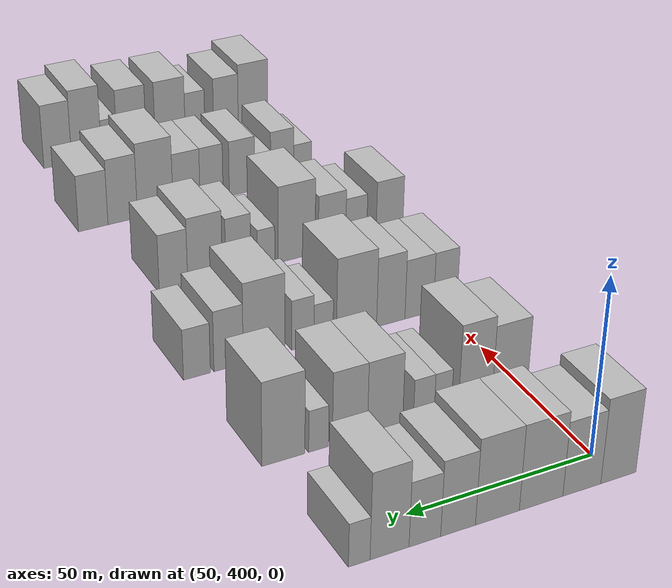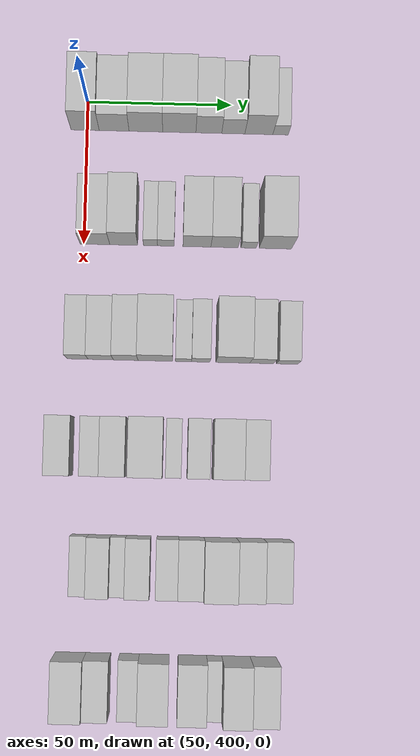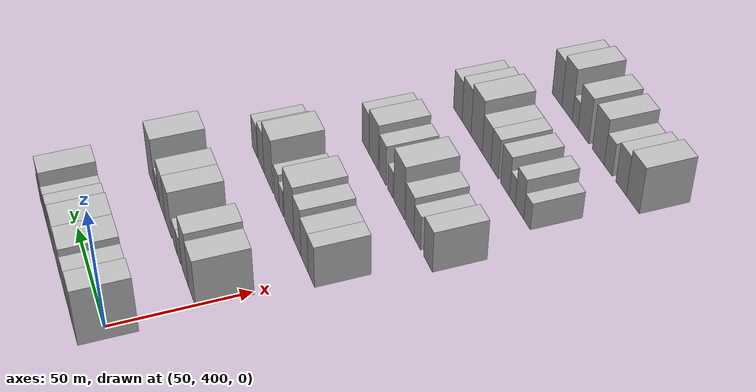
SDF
<sdf version="1.6">
 <world name="default">
  <model name="building_118">
   <static>1</static>
   <pose>50.0000 399.3098 0 0.000000 0.000000 0.000000</pose>
   <link name="link">
    <pose>0 0 12.00 0 0 0</pose>
    <collision name="collision"><geometry><box><size>20.0000 9.7949 24.0000</size></box></geometry></collision>
    <visual name="visual">
     <cast_shadows>0</cast_shadows>
     <geometry><box><size>20.0000 9.7949 24.0000</size></box></geometry>
     <material>
      <script>
       <uri>model://HANNAS_wall/materials/scripts</uri>
       <uri>model://HANNAS_wall/materials/textures</uri>
       <name>vrc/HANNAS_wall</name>
      </script>
     </material>
    </visual>
   </link>
  </model>
  <model name="building_119">
   <static>1</static>
   <pose>50.0000 409.4049 0 0.000000 0.000000 0.000000</pose>
   <link name="link">
    <pose>0 0 10.50 0 0 0</pose>
    <collision name="collision"><geometry><box><size>20.0000 10.3953 21.0000</size></box></geometry></collision>
    <visual name="visual">
     <cast_shadows>0</cast_shadows>
     <geometry><box><size>20.0000 10.3953 21.0000</size></box></geometry>
     <material>
      <script>
       <uri>model://HANNAS_wall/materials/scripts</uri>
       <uri>model://HANNAS_wall/materials/textures</uri>
       <name>vrc/HANNAS_wall</name>
      </script>
     </material>
    </visual>
   </link>
  </model>
  <model name="building_120">
   <static>1</static>
   <pose>50.0000 420.4561 0 0.000000 0.000000 0.000000</pose>
   <link name="link">
    <pose>0 0 12.00 0 0 0</pose>
    <collision name="collision"><geometry><box><size>20.0000 11.7071 24.0000</size></box></geometry></collision>
    <visual name="visual">
     <cast_shadows>0</cast_shadows>
     <geometry><box><size>20.0000 11.7071 24.0000</size></box></geometry>
     <material>
      <script>
       <uri>model://HANNAS_wall/materials/scripts</uri>
       <uri>model://HANNAS_wall/materials/textures</uri>
       <name>vrc/HANNAS_wall</name>
      </script>
     </material>
    </visual>
   </link>
  </model>
  <model name="building_121">
   <static>1</static>
   <pose>50.0000 432.0817 0 0.000000 0.000000 0.000000</pose>
   <link name="link">
    <pose>0 0 12.00 0 0 0</pose>
    <collision name="collision"><geometry><box><size>20.0000 11.5442 24.0000</size></box></geometry></collision>
    <visual name="visual">
     <cast_shadows>0</cast_shadows>
     <geometry><box><size>20.0000 11.5442 24.0000</size></box></geometry>
     <material>
      <script>
       <uri>model://HANNAS_wall/materials/scripts</uri>
       <uri>model://HANNAS_wall/materials/textures</uri>
       <name>vrc/HANNAS_wall</name>
      </script>
     </material>
    </visual>
   </link>
  </model>
  <model name="building_122">
   <static>1</static>
   <pose>50.0000 442.3535 0 0.000000 0.000000 0.000000</pose>
   <link name="link">
    <pose>0 0 10.50 0 0 0</pose>
    <collision name="collision"><geometry><box><size>20.0000 8.9993 21.0000</size></box></geometry></collision>
    <visual name="visual">
     <cast_shadows>0</cast_shadows>
     <geometry><box><size>20.0000 8.9993 21.0000</size></box></geometry>
     <material>
      <script>
       <uri>model://HANNAS_wall/materials/scripts</uri>
       <uri>model://HANNAS_wall/materials/textures</uri>
       <name>vrc/HANNAS_wall</name>
      </script>
     </material>
    </visual>
   </link>
  </model>
  <model name="building_123">
   <static>1</static>
   <pose>50.0000 450.8728 0 0.000000 0.000000 0.000000</pose>
   <link name="link">
    <pose>0 0 9.00 0 0 0</pose>
    <collision name="collision"><geometry><box><size>20.0000 8.0392 18.0000</size></box></geometry></collision>
    <visual name="visual">
     <cast_shadows>0</cast_shadows>
     <geometry><box><size>20.0000 8.0392 18.0000</size></box></geometry>
     <material>
      <script>
       <uri>model://HANNAS_wall/materials/scripts</uri>
       <uri>model://HANNAS_wall/materials/textures</uri>
       <name>vrc/HANNAS_wall</name>
      </script>
     </material>
    </visual>
   </link>
  </model>
  <model name="building_124">
   <static>1</static>
   <pose>50.0000 459.7650 0 0.000000 0.000000 0.000000</pose>
   <link name="link">
    <pose>0 0 12.00 0 0 0</pose>
    <collision name="collision"><geometry><box><size>20.0000 9.7453 24.0000</size></box></geometry></collision>
    <visual name="visual">
     <cast_shadows>0</cast_shadows>
     <geometry><box><size>20.0000 9.7453 24.0000</size></box></geometry>
     <material>
      <script>
       <uri>model://HANNAS_wall/materials/scripts</uri>
       <uri>model://HANNAS_wall/materials/textures</uri>
       <name>vrc/HANNAS_wall</name>
      </script>
     </material>
    </visual>
   </link>
  </model>
  <model name="building_125">
   <static>1</static>
   <pose>50.0000 467.3127 0 0.000000 0.000000 0.000000</pose>
   <link name="link">
    <pose>0 0 6.00 0 0 0</pose>
    <collision name="collision"><geometry><box><size>20.0000 5.3501 12.0000</size></box></geometry></collision>
    <visual name="visual">
     <cast_shadows>0</cast_shadows>
     <geometry><box><size>20.0000 5.3501 12.0000</size></box></geometry>
     <material>
      <script>
       <uri>model://HANNAS_wall/materials/scripts</uri>
       <uri>model://HANNAS_wall/materials/textures</uri>
       <name>vrc/HANNAS_wall</name>
      </script>
     </material>
    </visual>
   </link>
  </model>
  <model name="building_239">
   <static>1</static>
   <pose>90.0000 403.8618 0 0.000000 0.000000 0.000000</pose>
   <link name="link">
    <pose>0 0 10.50 0 0 0</pose>
    <collision name="collision"><geometry><box><size>20.0000 10.2549 21.0000</size></box></geometry></collision>
    <visual name="visual">
     <cast_shadows>0</cast_shadows>
     <geometry><box><size>20.0000 10.2549 21.0000</size></box></geometry>
     <material>
      <script>
       <uri>model://HANNAS_wall/materials/scripts</uri>
       <uri>model://HANNAS_wall/materials/textures</uri>
       <name>vrc/HANNAS_wall</name>
      </script>
     </material>
    </visual>
   </link>
  </model>
  <model name="building_240">
   <static>1</static>
   <pose>90.0000 413.8227 0 0.000000 0.000000 0.000000</pose>
   <link name="link">
    <pose>0 0 12.00 0 0 0</pose>
    <collision name="collision"><geometry><box><size>20.0000 9.6669 24.0000</size></box></geometry></collision>
    <visual name="visual">
     <cast_shadows>0</cast_shadows>
     <geometry><box><size>20.0000 9.6669 24.0000</size></box></geometry>
     <material>
      <script>
       <uri>model://HANNAS_wall/materials/scripts</uri>
       <uri>model://HANNAS_wall/materials/textures</uri>
       <name>vrc/HANNAS_wall</name>
      </script>
     </material>
    </visual>
   </link>
  </model>
  <model name="building_241">
   <static>1</static>
   <pose>90.0000 423.0763 0 0.000000 0.000000 0.000000</pose>
   <link name="link">
    <pose>0 0 6.00 0 0 0</pose>
    <collision name="collision"><geometry><box><size>20.0000 4.8404 12.0000</size></box></geometry></collision>
    <visual name="visual">
     <cast_shadows>0</cast_shadows>
     <geometry><box><size>20.0000 4.8404 12.0000</size></box></geometry>
     <material>
      <script>
       <uri>model://HANNAS_wall/materials/scripts</uri>
       <uri>model://HANNAS_wall/materials/textures</uri>
       <name>vrc/HANNAS_wall</name>
      </script>
     </material>
    </visual>
   </link>
  </model>
  <model name="building_242">
   <static>1</static>
   <pose>90.0000 428.3916 0 0.000000 0.000000 0.000000</pose>
   <link name="link">
    <pose>0 0 6.00 0 0 0</pose>
    <collision name="collision"><geometry><box><size>20.0000 5.7902 12.0000</size></box></geometry></collision>
    <visual name="visual">
     <cast_shadows>0</cast_shadows>
     <geometry><box><size>20.0000 5.7902 12.0000</size></box></geometry>
     <material>
      <script>
       <uri>model://HANNAS_wall/materials/scripts</uri>
       <uri>model://HANNAS_wall/materials/textures</uri>
       <name>vrc/HANNAS_wall</name>
      </script>
     </material>
    </visual>
   </link>
  </model>
  <model name="building_243">
   <static>1</static>
   <pose>90.0000 439.1144 0 0.000000 0.000000 0.000000</pose>
   <link name="link">
    <pose>0 0 10.50 0 0 0</pose>
    <collision name="collision"><geometry><box><size>20.0000 9.6554 21.0000</size></box></geometry></collision>
    <visual name="visual">
     <cast_shadows>0</cast_shadows>
     <geometry><box><size>20.0000 9.6554 21.0000</size></box></geometry>
     <material>
      <script>
       <uri>model://HANNAS_wall/materials/scripts</uri>
       <uri>model://HANNAS_wall/materials/textures</uri>
       <name>vrc/HANNAS_wall</name>
      </script>
     </material>
    </visual>
   </link>
  </model>
  <model name="building_244">
   <static>1</static>
   <pose>90.0000 448.6526 0 0.000000 0.000000 0.000000</pose>
   <link name="link">
    <pose>0 0 10.50 0 0 0</pose>
    <collision name="collision"><geometry><box><size>20.0000 9.4209 21.0000</size></box></geometry></collision>
    <visual name="visual">
     <cast_shadows>0</cast_shadows>
     <geometry><box><size>20.0000 9.4209 21.0000</size></box></geometry>
     <material>
      <script>
       <uri>model://HANNAS_wall/materials/scripts</uri>
       <uri>model://HANNAS_wall/materials/textures</uri>
       <name>vrc/HANNAS_wall</name>
      </script>
     </material>
    </visual>
   </link>
  </model>
  <model name="building_245">
   <static>1</static>
   <pose>90.0000 457.0081 0 0.000000 0.000000 0.000000</pose>
   <link name="link">
    <pose>0 0 6.00 0 0 0</pose>
    <collision name="collision"><geometry><box><size>20.0000 5.2902 12.0000</size></box></geometry></collision>
    <visual name="visual">
     <cast_shadows>0</cast_shadows>
     <geometry><box><size>20.0000 5.2902 12.0000</size></box></geometry>
     <material>
      <script>
       <uri>model://HANNAS_wall/materials/scripts</uri>
       <uri>model://HANNAS_wall/materials/textures</uri>
       <name>vrc/HANNAS_wall</name>
      </script>
     </material>
    </visual>
   </link>
  </model>
  <model name="building_246">
   <static>1</static>
   <pose>90.0000 466.2679 0 0.000000 0.000000 0.000000</pose>
   <link name="link">
    <pose>0 0 12.00 0 0 0</pose>
    <collision name="collision"><geometry><box><size>20.0000 11.2294 24.0000</size></box></geometry></collision>
    <visual name="visual">
     <cast_shadows>0</cast_shadows>
     <geometry><box><size>20.0000 11.2294 24.0000</size></box></geometry>
     <material>
      <script>
       <uri>model://HANNAS_wall/materials/scripts</uri>
       <uri>model://HANNAS_wall/materials/textures</uri>
       <name>vrc/HANNAS_wall</name>
      </script>
     </material>
    </visual>
   </link>
  </model>
  <model name="building_373">
   <static>1</static>
   <pose>130.0000 399.0765 0 0.000000 0.000000 0.000000</pose>
   <link name="link">
    <pose>0 0 9.00 0 0 0</pose>
    <collision name="collision"><geometry><box><size>20.0000 7.2151 18.0000</size></box></geometry></collision>
    <visual name="visual">
     <cast_shadows>0</cast_shadows>
     <geometry><box><size>20.0000 7.2151 18.0000</size></box></geometry>
     <material>
      <script>
       <uri>model://HANNAS_wall/materials/scripts</uri>
       <uri>model://HANNAS_wall/materials/textures</uri>
       <name>vrc/HANNAS_wall</name>
      </script>
     </material>
    </visual>
   </link>
  </model>
  <model name="building_374">
   <static>1</static>
   <pose>130.0000 407.0105 0 0.000000 0.000000 0.000000</pose>
   <link name="link">
    <pose>0 0 9.00 0 0 0</pose>
    <collision name="collision"><geometry><box><size>20.0000 8.6527 18.0000</size></box></geometry></collision>
    <visual name="visual">
     <cast_shadows>0</cast_shadows>
     <geometry><box><size>20.0000 8.6527 18.0000</size></box></geometry>
     <material>
      <script>
       <uri>model://HANNAS_wall/materials/scripts</uri>
       <uri>model://HANNAS_wall/materials/textures</uri>
       <name>vrc/HANNAS_wall</name>
      </script>
     </material>
    </visual>
   </link>
  </model>
  <model name="building_375">
   <static>1</static>
   <pose>130.0000 415.5756 0 0.000000 0.000000 0.000000</pose>
   <link name="link">
    <pose>0 0 10.50 0 0 0</pose>
    <collision name="collision"><geometry><box><size>20.0000 8.4777 21.0000</size></box></geometry></collision>
    <visual name="visual">
     <cast_shadows>0</cast_shadows>
     <geometry><box><size>20.0000 8.4777 21.0000</size></box></geometry>
     <material>
      <script>
       <uri>model://HANNAS_wall/materials/scripts</uri>
       <uri>model://HANNAS_wall/materials/textures</uri>
       <name>vrc/HANNAS_wall</name>
      </script>
     </material>
    </visual>
   </link>
  </model>
  <model name="building_376">
   <static>1</static>
   <pose>130.0000 425.7282 0 0.000000 0.000000 0.000000</pose>
   <link name="link">
    <pose>0 0 12.00 0 0 0</pose>
    <collision name="collision"><geometry><box><size>20.0000 11.8275 24.0000</size></box></geometry></collision>
    <visual name="visual">
     <cast_shadows>0</cast_shadows>
     <geometry><box><size>20.0000 11.8275 24.0000</size></box></geometry>
     <material>
      <script>
       <uri>model://HANNAS_wall/materials/scripts</uri>
       <uri>model://HANNAS_wall/materials/textures</uri>
       <name>vrc/HANNAS_wall</name>
      </script>
     </material>
    </visual>
   </link>
  </model>
  <model name="building_377">
   <static>1</static>
   <pose>130.0000 435.3928 0 0.000000 0.000000 0.000000</pose>
   <link name="link">
    <pose>0 0 6.00 0 0 0</pose>
    <collision name="collision"><geometry><box><size>20.0000 5.5018 12.0000</size></box></geometry></collision>
    <visual name="visual">
     <cast_shadows>0</cast_shadows>
     <geometry><box><size>20.0000 5.5018 12.0000</size></box></geometry>
     <material>
      <script>
       <uri>model://HANNAS_wall/materials/scripts</uri>
       <uri>model://HANNAS_wall/materials/textures</uri>
       <name>vrc/HANNAS_wall</name>
      </script>
     </material>
    </visual>
   </link>
  </model>
  <model name="building_378">
   <static>1</static>
   <pose>130.0000 441.3277 0 0.000000 0.000000 0.000000</pose>
   <link name="link">
    <pose>0 0 7.50 0 0 0</pose>
    <collision name="collision"><geometry><box><size>20.0000 6.3680 15.0000</size></box></geometry></collision>
    <visual name="visual">
     <cast_shadows>0</cast_shadows>
     <geometry><box><size>20.0000 6.3680 15.0000</size></box></geometry>
     <material>
      <script>
       <uri>model://HANNAS_wall/materials/scripts</uri>
       <uri>model://HANNAS_wall/materials/textures</uri>
       <name>vrc/HANNAS_wall</name>
      </script>
     </material>
    </visual>
   </link>
  </model>
  <model name="building_379">
   <static>1</static>
   <pose>130.0000 452.3756 0 0.000000 0.000000 0.000000</pose>
   <link name="link">
    <pose>0 0 12.00 0 0 0</pose>
    <collision name="collision"><geometry><box><size>20.0000 11.7278 24.0000</size></box></geometry></collision>
    <visual name="visual">
     <cast_shadows>0</cast_shadows>
     <geometry><box><size>20.0000 11.7278 24.0000</size></box></geometry>
     <material>
      <script>
       <uri>model://HANNAS_wall/materials/scripts</uri>
       <uri>model://HANNAS_wall/materials/textures</uri>
       <name>vrc/HANNAS_wall</name>
      </script>
     </material>
    </visual>
   </link>
  </model>
  <model name="building_380">
   <static>1</static>
   <pose>130.0000 462.3001 0 0.000000 0.000000 0.000000</pose>
   <link name="link">
    <pose>0 0 9.00 0 0 0</pose>
    <collision name="collision"><geometry><box><size>20.0000 8.1212 18.0000</size></box></geometry></collision>
    <visual name="visual">
     <cast_shadows>0</cast_shadows>
     <geometry><box><size>20.0000 8.1212 18.0000</size></box></geometry>
     <material>
      <script>
       <uri>model://HANNAS_wall/materials/scripts</uri>
       <uri>model://HANNAS_wall/materials/textures</uri>
       <name>vrc/HANNAS_wall</name>
      </script>
     </material>
    </visual>
   </link>
  </model>
  <model name="building_381">
   <static>1</static>
   <pose>130.0000 471.0426 0 0.000000 0.000000 0.000000</pose>
   <link name="link">
    <pose>0 0 7.50 0 0 0</pose>
    <collision name="collision"><geometry><box><size>20.0000 7.3638 15.0000</size></box></geometry></collision>
    <visual name="visual">
     <cast_shadows>0</cast_shadows>
     <geometry><box><size>20.0000 7.3638 15.0000</size></box></geometry>
     <material>
      <script>
       <uri>model://HANNAS_wall/materials/scripts</uri>
       <uri>model://HANNAS_wall/materials/textures</uri>
       <name>vrc/HANNAS_wall</name>
      </script>
     </material>
    </visual>
   </link>
  </model>
  <model name="building_520">
   <static>1</static>
   <pose>170.0000 394.0742 0 0.000000 0.000000 0.000000</pose>
   <link name="link">
    <pose>0 0 9.00 0 0 0</pose>
    <collision name="collision"><geometry><box><size>20.0000 8.6525 18.0000</size></box></geometry></collision>
    <visual name="visual">
     <cast_shadows>0</cast_shadows>
     <geometry><box><size>20.0000 8.6525 18.0000</size></box></geometry>
     <material>
      <script>
       <uri>model://HANNAS_wall/materials/scripts</uri>
       <uri>model://HANNAS_wall/materials/textures</uri>
       <name>vrc/HANNAS_wall</name>
      </script>
     </material>
    </visual>
   </link>
  </model>
  <model name="building_521">
   <static>1</static>
   <pose>170.0000 404.7446 0 0.000000 0.000000 0.000000</pose>
   <link name="link">
    <pose>0 0 7.50 0 0 0</pose>
    <collision name="collision"><geometry><box><size>20.0000 6.6881 15.0000</size></box></geometry></collision>
    <visual name="visual">
     <cast_shadows>0</cast_shadows>
     <geometry><box><size>20.0000 6.6881 15.0000</size></box></geometry>
     <material>
      <script>
       <uri>model://HANNAS_wall/materials/scripts</uri>
       <uri>model://HANNAS_wall/materials/textures</uri>
       <name>vrc/HANNAS_wall</name>
      </script>
     </material>
    </visual>
   </link>
  </model>
  <model name="building_522">
   <static>1</static>
   <pose>170.0000 412.3998 0 0.000000 0.000000 0.000000</pose>
   <link name="link">
    <pose>0 0 9.00 0 0 0</pose>
    <collision name="collision"><geometry><box><size>20.0000 8.6223 18.0000</size></box></geometry></collision>
    <visual name="visual">
     <cast_shadows>0</cast_shadows>
     <geometry><box><size>20.0000 8.6223 18.0000</size></box></geometry>
     <material>
      <script>
       <uri>model://HANNAS_wall/materials/scripts</uri>
       <uri>model://HANNAS_wall/materials/textures</uri>
       <name>vrc/HANNAS_wall</name>
      </script>
     </material>
    </visual>
   </link>
  </model>
  <model name="building_523">
   <static>1</static>
   <pose>170.0000 423.4497 0 0.000000 0.000000 0.000000</pose>
   <link name="link">
    <pose>0 0 12.00 0 0 0</pose>
    <collision name="collision"><geometry><box><size>20.0000 11.4775 24.0000</size></box></geometry></collision>
    <visual name="visual">
     <cast_shadows>0</cast_shadows>
     <geometry><box><size>20.0000 11.4775 24.0000</size></box></geometry>
     <material>
      <script>
       <uri>model://HANNAS_wall/materials/scripts</uri>
       <uri>model://HANNAS_wall/materials/textures</uri>
       <name>vrc/HANNAS_wall</name>
      </script>
     </material>
    </visual>
   </link>
  </model>
  <model name="building_524">
   <static>1</static>
   <pose>170.0000 432.8402 0 0.000000 0.000000 0.000000</pose>
   <link name="link">
    <pose>0 0 6.00 0 0 0</pose>
    <collision name="collision"><geometry><box><size>20.0000 5.3037 12.0000</size></box></geometry></collision>
    <visual name="visual">
     <cast_shadows>0</cast_shadows>
     <geometry><box><size>20.0000 5.3037 12.0000</size></box></geometry>
     <material>
      <script>
       <uri>model://HANNAS_wall/materials/scripts</uri>
       <uri>model://HANNAS_wall/materials/textures</uri>
       <name>vrc/HANNAS_wall</name>
      </script>
     </material>
    </visual>
   </link>
  </model>
  <model name="building_525">
   <static>1</static>
   <pose>170.0000 441.2734 0 0.000000 0.000000 0.000000</pose>
   <link name="link">
    <pose>0 0 9.00 0 0 0</pose>
    <collision name="collision"><geometry><box><size>20.0000 7.5625 18.0000</size></box></geometry></collision>
    <visual name="visual">
     <cast_shadows>0</cast_shadows>
     <geometry><box><size>20.0000 7.5625 18.0000</size></box></geometry>
     <material>
      <script>
       <uri>model://HANNAS_wall/materials/scripts</uri>
       <uri>model://HANNAS_wall/materials/textures</uri>
       <name>vrc/HANNAS_wall</name>
      </script>
     </material>
    </visual>
   </link>
  </model>
  <model name="building_526">
   <static>1</static>
   <pose>170.0000 451.2049 0 0.000000 0.000000 0.000000</pose>
   <link name="link">
    <pose>0 0 10.50 0 0 0</pose>
    <collision name="collision"><geometry><box><size>20.0000 10.3005 21.0000</size></box></geometry></collision>
    <visual name="visual">
     <cast_shadows>0</cast_shadows>
     <geometry><box><size>20.0000 10.3005 21.0000</size></box></geometry>
     <material>
      <script>
       <uri>model://HANNAS_wall/materials/scripts</uri>
       <uri>model://HANNAS_wall/materials/textures</uri>
       <name>vrc/HANNAS_wall</name>
      </script>
     </material>
    </visual>
   </link>
  </model>
  <model name="building_527">
   <static>1</static>
   <pose>170.0000 460.5320 0 0.000000 0.000000 0.000000</pose>
   <link name="link">
    <pose>0 0 9.00 0 0 0</pose>
    <collision name="collision"><geometry><box><size>20.0000 8.3538 18.0000</size></box></geometry></collision>
    <visual name="visual">
     <cast_shadows>0</cast_shadows>
     <geometry><box><size>20.0000 8.3538 18.0000</size></box></geometry>
     <material>
      <script>
       <uri>model://HANNAS_wall/materials/scripts</uri>
       <uri>model://HANNAS_wall/materials/textures</uri>
       <name>vrc/HANNAS_wall</name>
      </script>
     </material>
    </visual>
   </link>
  </model>
  <model name="building_651">
   <static>1</static>
   <pose>210.0000 401.7601 0 0.000000 0.000000 0.000000</pose>
   <link name="link">
    <pose>0 0 6.00 0 0 0</pose>
    <collision name="collision"><geometry><box><size>20.0000 5.9090 12.0000</size></box></geometry></collision>
    <visual name="visual">
     <cast_shadows>0</cast_shadows>
     <geometry><box><size>20.0000 5.9090 12.0000</size></box></geometry>
     <material>
      <script>
       <uri>model://HANNAS_wall/materials/scripts</uri>
       <uri>model://HANNAS_wall/materials/textures</uri>
       <name>vrc/HANNAS_wall</name>
      </script>
     </material>
    </visual>
   </link>
  </model>
  <model name="building_652">
   <static>1</static>
   <pose>210.0000 408.5396 0 0.000000 0.000000 0.000000</pose>
   <link name="link">
    <pose>0 0 9.00 0 0 0</pose>
    <collision name="collision"><geometry><box><size>20.0000 7.6499 18.0000</size></box></geometry></collision>
    <visual name="visual">
     <cast_shadows>0</cast_shadows>
     <geometry><box><size>20.0000 7.6499 18.0000</size></box></geometry>
     <material>
      <script>
       <uri>model://HANNAS_wall/materials/scripts</uri>
       <uri>model://HANNAS_wall/materials/textures</uri>
       <name>vrc/HANNAS_wall</name>
      </script>
     </material>
    </visual>
   </link>
  </model>
  <model name="building_653">
   <static>1</static>
   <pose>210.0000 414.9792 0 0.000000 0.000000 0.000000</pose>
   <link name="link">
    <pose>0 0 6.00 0 0 0</pose>
    <collision name="collision"><geometry><box><size>20.0000 5.2293 12.0000</size></box></geometry></collision>
    <visual name="visual">
     <cast_shadows>0</cast_shadows>
     <geometry><box><size>20.0000 5.2293 12.0000</size></box></geometry>
     <material>
      <script>
       <uri>model://HANNAS_wall/materials/scripts</uri>
       <uri>model://HANNAS_wall/materials/textures</uri>
       <name>vrc/HANNAS_wall</name>
      </script>
     </material>
    </visual>
   </link>
  </model>
  <model name="building_654">
   <static>1</static>
   <pose>210.0000 421.7200 0 0.000000 0.000000 0.000000</pose>
   <link name="link">
    <pose>0 0 9.00 0 0 0</pose>
    <collision name="collision"><geometry><box><size>20.0000 8.2524 18.0000</size></box></geometry></collision>
    <visual name="visual">
     <cast_shadows>0</cast_shadows>
     <geometry><box><size>20.0000 8.2524 18.0000</size></box></geometry>
     <material>
      <script>
       <uri>model://HANNAS_wall/materials/scripts</uri>
       <uri>model://HANNAS_wall/materials/textures</uri>
       <name>vrc/HANNAS_wall</name>
      </script>
     </material>
    </visual>
   </link>
  </model>
  <model name="building_655">
   <static>1</static>
   <pose>210.0000 431.5353 0 0.000000 0.000000 0.000000</pose>
   <link name="link">
    <pose>0 0 9.00 0 0 0</pose>
    <collision name="collision"><geometry><box><size>20.0000 7.3783 18.0000</size></box></geometry></collision>
    <visual name="visual">
     <cast_shadows>0</cast_shadows>
     <geometry><box><size>20.0000 7.3783 18.0000</size></box></geometry>
     <material>
      <script>
       <uri>model://HANNAS_wall/materials/scripts</uri>
       <uri>model://HANNAS_wall/materials/textures</uri>
       <name>vrc/HANNAS_wall</name>
      </script>
     </material>
    </visual>
   </link>
  </model>
  <model name="building_656">
   <static>1</static>
   <pose>210.0000 439.5042 0 0.000000 0.000000 0.000000</pose>
   <link name="link">
    <pose>0 0 9.00 0 0 0</pose>
    <collision name="collision"><geometry><box><size>20.0000 8.5594 18.0000</size></box></geometry></collision>
    <visual name="visual">
     <cast_shadows>0</cast_shadows>
     <geometry><box><size>20.0000 8.5594 18.0000</size></box></geometry>
     <material>
      <script>
       <uri>model://HANNAS_wall/materials/scripts</uri>
       <uri>model://HANNAS_wall/materials/textures</uri>
       <name>vrc/HANNAS_wall</name>
      </script>
     </material>
    </visual>
   </link>
  </model>
  <model name="building_657">
   <static>1</static>
   <pose>210.0000 449.3596 0 0.000000 0.000000 0.000000</pose>
   <link name="link">
    <pose>0 0 12.00 0 0 0</pose>
    <collision name="collision"><geometry><box><size>20.0000 11.1515 24.0000</size></box></geometry></collision>
    <visual name="visual">
     <cast_shadows>0</cast_shadows>
     <geometry><box><size>20.0000 11.1515 24.0000</size></box></geometry>
     <material>
      <script>
       <uri>model://HANNAS_wall/materials/scripts</uri>
       <uri>model://HANNAS_wall/materials/textures</uri>
       <name>vrc/HANNAS_wall</name>
      </script>
     </material>
    </visual>
   </link>
  </model>
  <model name="building_658">
   <static>1</static>
   <pose>210.0000 459.4851 0 0.000000 0.000000 0.000000</pose>
   <link name="link">
    <pose>0 0 10.50 0 0 0</pose>
    <collision name="collision"><geometry><box><size>20.0000 9.0993 21.0000</size></box></geometry></collision>
    <visual name="visual">
     <cast_shadows>0</cast_shadows>
     <geometry><box><size>20.0000 9.0993 21.0000</size></box></geometry>
     <material>
      <script>
       <uri>model://HANNAS_wall/materials/scripts</uri>
       <uri>model://HANNAS_wall/materials/textures</uri>
       <name>vrc/HANNAS_wall</name>
      </script>
     </material>
    </visual>
   </link>
  </model>
  <model name="building_659">
   <static>1</static>
   <pose>210.0000 468.5243 0 0.000000 0.000000 0.000000</pose>
   <link name="link">
    <pose>0 0 9.00 0 0 0</pose>
    <collision name="collision"><geometry><box><size>20.0000 8.9791 18.0000</size></box></geometry></collision>
    <visual name="visual">
     <cast_shadows>0</cast_shadows>
     <geometry><box><size>20.0000 8.9791 18.0000</size></box></geometry>
     <material>
      <script>
       <uri>model://HANNAS_wall/materials/scripts</uri>
       <uri>model://HANNAS_wall/materials/textures</uri>
       <name>vrc/HANNAS_wall</name>
      </script>
     </material>
    </visual>
   </link>
  </model>
  <model name="building_791">
   <static>1</static>
   <pose>250.0000 399.4479 0 0.000000 0.000000 0.000000</pose>
   <link name="link">
    <pose>0 0 10.50 0 0 0</pose>
    <collision name="collision"><geometry><box><size>20.0000 10.3815 21.0000</size></box></geometry></collision>
    <visual name="visual">
     <cast_shadows>0</cast_shadows>
     <geometry><box><size>20.0000 10.3815 21.0000</size></box></geometry>
     <material>
      <script>
       <uri>model://HANNAS_wall/materials/scripts</uri>
       <uri>model://HANNAS_wall/materials/textures</uri>
       <name>vrc/HANNAS_wall</name>
      </script>
     </material>
    </visual>
   </link>
  </model>
  <model name="building_792">
   <static>1</static>
   <pose>250.0000 408.8787 0 0.000000 0.000000 0.000000</pose>
   <link name="link">
    <pose>0 0 9.00 0 0 0</pose>
    <collision name="collision"><geometry><box><size>20.0000 8.4801 18.0000</size></box></geometry></collision>
    <visual name="visual">
     <cast_shadows>0</cast_shadows>
     <geometry><box><size>20.0000 8.4801 18.0000</size></box></geometry>
     <material>
      <script>
       <uri>model://HANNAS_wall/materials/scripts</uri>
       <uri>model://HANNAS_wall/materials/textures</uri>
       <name>vrc/HANNAS_wall</name>
      </script>
     </material>
    </visual>
   </link>
  </model>
  <model name="building_793">
   <static>1</static>
   <pose>250.0000 419.4593 0 0.000000 0.000000 0.000000</pose>
   <link name="link">
    <pose>0 0 7.50 0 0 0</pose>
    <collision name="collision"><geometry><box><size>20.0000 6.6812 15.0000</size></box></geometry></collision>
    <visual name="visual">
     <cast_shadows>0</cast_shadows>
     <geometry><box><size>20.0000 6.6812 15.0000</size></box></geometry>
     <material>
      <script>
       <uri>model://HANNAS_wall/materials/scripts</uri>
       <uri>model://HANNAS_wall/materials/textures</uri>
       <name>vrc/HANNAS_wall</name>
      </script>
     </material>
    </visual>
   </link>
  </model>
  <model name="building_794">
   <static>1</static>
   <pose>250.0000 427.8581 0 0.000000 0.000000 0.000000</pose>
   <link name="link">
    <pose>0 0 10.50 0 0 0</pose>
    <collision name="collision"><geometry><box><size>20.0000 10.1164 21.0000</size></box></geometry></collision>
    <visual name="visual">
     <cast_shadows>0</cast_shadows>
     <geometry><box><size>20.0000 10.1164 21.0000</size></box></geometry>
     <material>
      <script>
       <uri>model://HANNAS_wall/materials/scripts</uri>
       <uri>model://HANNAS_wall/materials/textures</uri>
       <name>vrc/HANNAS_wall</name>
      </script>
     </material>
    </visual>
   </link>
  </model>
  <model name="building_795">
   <static>1</static>
   <pose>250.0000 440.7438 0 0.000000 0.000000 0.000000</pose>
   <link name="link">
    <pose>0 0 10.50 0 0 0</pose>
    <collision name="collision"><geometry><box><size>20.0000 9.6549 21.0000</size></box></geometry></collision>
    <visual name="visual">
     <cast_shadows>0</cast_shadows>
     <geometry><box><size>20.0000 9.6549 21.0000</size></box></geometry>
     <material>
      <script>
       <uri>model://HANNAS_wall/materials/scripts</uri>
       <uri>model://HANNAS_wall/materials/textures</uri>
       <name>vrc/HANNAS_wall</name>
      </script>
     </material>
    </visual>
   </link>
  </model>
  <model name="building_796">
   <static>1</static>
   <pose>250.0000 448.1594 0 0.000000 0.000000 0.000000</pose>
   <link name="link">
    <pose>0 0 6.00 0 0 0</pose>
    <collision name="collision"><geometry><box><size>20.0000 5.1763 12.0000</size></box></geometry></collision>
    <visual name="visual">
     <cast_shadows>0</cast_shadows>
     <geometry><box><size>20.0000 5.1763 12.0000</size></box></geometry>
     <material>
      <script>
       <uri>model://HANNAS_wall/materials/scripts</uri>
       <uri>model://HANNAS_wall/materials/textures</uri>
       <name>vrc/HANNAS_wall</name>
      </script>
     </material>
    </visual>
   </link>
  </model>
  <model name="building_797">
   <static>1</static>
   <pose>250.0000 455.5755 0 0.000000 0.000000 0.000000</pose>
   <link name="link">
    <pose>0 0 12.00 0 0 0</pose>
    <collision name="collision"><geometry><box><size>20.0000 9.6559 24.0000</size></box></geometry></collision>
    <visual name="visual">
     <cast_shadows>0</cast_shadows>
     <geometry><box><size>20.0000 9.6559 24.0000</size></box></geometry>
     <material>
      <script>
       <uri>model://HANNAS_wall/materials/scripts</uri>
       <uri>model://HANNAS_wall/materials/textures</uri>
       <name>vrc/HANNAS_wall</name>
      </script>
     </material>
    </visual>
   </link>
  </model>
  <model name="building_798">
   <static>1</static>
   <pose>250.0000 464.8646 0 0.000000 0.000000 0.000000</pose>
   <link name="link">
    <pose>0 0 10.50 0 0 0</pose>
    <collision name="collision"><geometry><box><size>20.0000 8.9221 21.0000</size></box></geometry></collision>
    <visual name="visual">
     <cast_shadows>0</cast_shadows>
     <geometry><box><size>20.0000 8.9221 21.0000</size></box></geometry>
     <material>
      <script>
       <uri>model://HANNAS_wall/materials/scripts</uri>
       <uri>model://HANNAS_wall/materials/textures</uri>
       <name>vrc/HANNAS_wall</name>
      </script>
     </material>
    </visual>
   </link>
  </model>
 </world>
</sdf>
